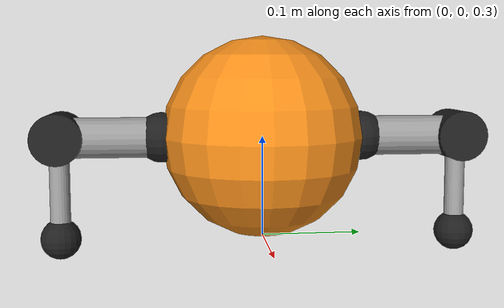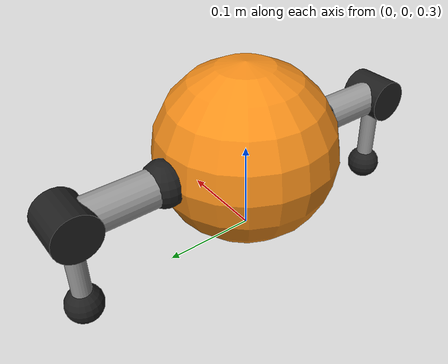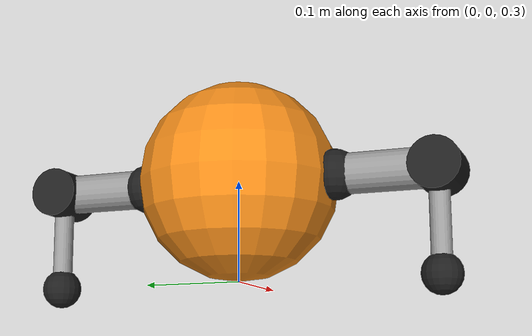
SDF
<sdf version='1.6'>
  <model name='centipede'>
    <link name='base_link'>
      <pose frame=''>0 0 0 0 -0 0</pose>
      <inertial>
        <pose frame=''>0 0 0.4 0 -0 0</pose>
        <mass>1</mass>
        <inertia>
          <ixx>0.004</ixx>
          <ixy>0</ixy>
          <ixz>0</ixz>
          <iyy>0.004</iyy>
          <iyz>0</iyz>
          <izz>0.004</izz>
        </inertia>
      </inertial>
      <collision name='base_link_fixed_joint_lump__body1_collision'>
        <pose frame=''>0 0 0.4 0 -0 0</pose>
        <geometry>
          <sphere>
            <radius>0.1</radius>
          </sphere>
        </geometry>
        <surface>
          <contact>
            <ode/>
          </contact>
          <friction>
            <ode/>
          </friction>
        </surface>
      </collision>
      <visual name='base_link_fixed_joint_lump__body1_visual'>
        <pose frame=''>0 0 0.4 0 -0 0</pose>
        <geometry>
          <sphere>
            <radius>0.1</radius>
          </sphere>
        </geometry>
        <material>
          <script>
            <name>Gazebo/Orange</name>
            <uri>file://media/materials/scripts/gazebo.material</uri>
          </script>
        </material>
      </visual>
      <gravity>1</gravity>
      <velocity_decay/>
    </link>
    <link name='base_left_1'>
      <pose frame=''>0 0.1 0.4 0 -0 1.5708</pose>
      <inertial>
        <pose frame=''>0 0 0 0 -0 0</pose>
        <mass>0.5</mass>
        <inertia>
          <ixx>0.000125</ixx>
          <ixy>0</ixy>
          <ixz>0</ixz>
          <iyy>0.000125</iyy>
          <iyz>0</iyz>
          <izz>0.000125</izz>
        </inertia>
      </inertial>
      <collision name='base_left_1_collision'>
        <pose frame=''>0 0 0 0 -0 0</pose>
        <geometry>
          <sphere>
            <radius>0.025</radius>
          </sphere>
        </geometry>
        <surface>
          <contact>
            <ode/>
          </contact>
          <friction>
            <ode/>
          </friction>
        </surface>
      </collision>
      <visual name='base_left_1_visual'>
        <pose frame=''>0 0 0 0 -0 0</pose>
        <geometry>
          <sphere>
            <radius>0.025</radius>
          </sphere>
        </geometry>
        <material>
          <script>
            <name>Gazebo/Black</name>
            <uri>file://media/materials/scripts/gazebo.material</uri>
          </script>
        </material>
      </visual>
      <gravity>1</gravity>
      <velocity_decay/>
      <self_collide>0</self_collide>
    </link>
    <joint name='hinge_left_1_1' type='revolute'>
      <child>base_left_1</child>
      <parent>base_link</parent>
      <axis>
        <xyz>0 0 1</xyz>
        <limit>
          <lower>-0.392688</lower>
          <upper>0.785</upper>
          <effort>1000</effort>
          <velocity>100</velocity>
        </limit>
        <dynamics>
          <spring_reference>0</spring_reference>
          <spring_stiffness>0</spring_stiffness>
        </dynamics>
        <use_parent_model_frame>1</use_parent_model_frame>
      </axis>
    </joint>
    <link name='link_left_1_upper'>
      <pose frame=''>0 0.1 0.4 0 1.5707 1.5708</pose>
      <inertial>
        <pose frame=''>0 0 0.06 0 -0 0</pose>
        <mass>2.5</mass>
        <inertia>
          <ixx>0.00304896</ixx>
          <ixy>0</ixy>
          <ixz>0</ixz>
          <iyy>0.00302292</iyy>
          <iyz>2.50851e-09</iyz>
          <izz>0.000582292</izz>
        </inertia>
      </inertial>
      <collision name='link_left_1_upper_collision'>
        <pose frame=''>0 0 0.05 0 -0 0</pose>
        <geometry>
          <cylinder>
            <length>0.1</length>
            <radius>0.02</radius>
          </cylinder>
        </geometry>
        <surface>
          <contact>
            <ode>
              <kp>1e+07</kp>
              <kd>1</kd>
            </ode>
          </contact>
          <friction>
            <ode>
              <mu>10000</mu>
              <mu2>10000</mu2>
              <fdir1>1 0 0</fdir1>
            </ode>
          </friction>
        </surface>
      </collision>
      <collision name='link_left_1_upper_fixed_joint_lump__serbo_left_1_collision_1'>
        <pose frame=''>0 0 0.1 1.5707 -0 0</pose>
        <geometry>
          <cylinder>
            <length>0.05</length>
            <radius>0.025</radius>
          </cylinder>
        </geometry>
        <surface>
          <contact>
            <ode>
              <kp>1e+07</kp>
              <kd>1</kd>
            </ode>
          </contact>
          <friction>
            <ode>
              <mu>10000</mu>
              <mu2>10000</mu2>
              <fdir1>1 0 0</fdir1>
            </ode>
          </friction>
        </surface>
      </collision>
      <visual name='link_left_1_upper_visual'>
        <pose frame=''>0 0 0.05 0 -0 0</pose>
        <geometry>
          <cylinder>
            <length>0.1</length>
            <radius>0.02</radius>
          </cylinder>
        </geometry>
        <material>
          <script>
            <name>Gazebo/Gray</name>
            <uri>file://media/materials/scripts/gazebo.material</uri>
          </script>
        </material>
      </visual>
      <visual name='link_left_1_upper_fixed_joint_lump__serbo_left_1_visual_1'>
        <pose frame=''>0 0 0.1 1.5707 -0 0</pose>
        <geometry>
          <cylinder>
            <length>0.05</length>
            <radius>0.025</radius>
          </cylinder>
        </geometry>
        <material>
          <script>
            <name>Gazebo/Black</name>
            <uri>file://media/materials/scripts/gazebo.material</uri>
          </script>
        </material>
      </visual>
      <velocity_decay/>
      <gravity>1</gravity>
      <velocity_decay/>
      <self_collide>0</self_collide>
    </link>
    <joint name='hinge_left_1_2' type='revolute'>
      <child>link_left_1_upper</child>
      <parent>base_left_1</parent>
      <axis>
        <xyz>-1 0 -0</xyz>
        <limit>
          <lower>-0.1963</lower>
          <upper>0.1963</upper>
          <effort>1000</effort>
          <velocity>100</velocity>
        </limit>
        <dynamics>
          <spring_reference>0</spring_reference>
          <spring_stiffness>0</spring_stiffness>
        </dynamics>
        <use_parent_model_frame>1</use_parent_model_frame>
      </axis>
    </joint>
    <link name='link_left_1_lower'>
      <pose frame=''>0 0.2 0.40001 3.1415 9.6e-05 -3.1415</pose>
      <inertial>
        <pose frame=''>0 0 0.050495 0 -0 0</pose>
        <mass>2.02</mass>
        <inertia>
          <ixx>0.00176937</ixx>
          <ixy>0</ixy>
          <ixz>0</ixz>
          <iyy>0.00176937</iyy>
          <iyz>0</iyz>
          <izz>0.0001032</izz>
        </inertia>
      </inertial>
      <collision name='link_left_1_lower_collision'>
        <pose frame=''>0 0 0.05 0 -0 0</pose>
        <geometry>
          <cylinder>
            <length>0.1</length>
            <radius>0.01</radius>
          </cylinder>
        </geometry>
        <surface>
          <contact>
            <ode>
              <kp>1e+07</kp>
              <kd>1</kd>
            </ode>
          </contact>
          <friction>
            <ode>
              <mu>10000</mu>
              <mu2>10000</mu2>
              <fdir1>1 0 0</fdir1>
            </ode>
          </friction>
        </surface>
      </collision>
      <collision name='link_left_1_lower_fixed_joint_lump__ball_left_1_collision_1'>
        <pose frame=''>0 0 0.1 0 -0 0</pose>
        <geometry>
          <sphere>
            <radius>0.02</radius>
          </sphere>
        </geometry>
        <surface>
          <contact>
            <ode>
              <kp>1e+07</kp>
              <kd>1</kd>
            </ode>
          </contact>
          <friction>
            <ode>
              <mu>10000</mu>
              <mu2>10000</mu2>
              <fdir1>1 0 0</fdir1>
            </ode>
          </friction>
        </surface>
      </collision>
      <visual name='link_left_1_lower_visual'>
        <pose frame=''>0 0 0.05 0 -0 0</pose>
        <geometry>
          <cylinder>
            <length>0.1</length>
            <radius>0.01</radius>
          </cylinder>
        </geometry>
        <material>
          <script>
            <name>Gazebo/Gray</name>
            <uri>file://media/materials/scripts/gazebo.material</uri>
          </script>
        </material>
      </visual>
      <visual name='link_left_1_lower_fixed_joint_lump__ball_left_1_visual_1'>
        <pose frame=''>0 0 0.1 0 -0 0</pose>
        <geometry>
          <sphere>
            <radius>0.02</radius>
          </sphere>
        </geometry>
        <material>
          <script>
            <name>Gazebo/Black</name>
            <uri>file://media/materials/scripts/gazebo.material</uri>
          </script>
        </material>
      </visual>
      <velocity_decay/>
      <gravity>1</gravity>
      <velocity_decay/>
      <self_collide>0</self_collide>
    </link>
    <joint name='hinge_left_1_3' type='revolute'>
      <child>link_left_1_lower</child>
      <parent>link_left_1_upper</parent>
      <axis>
        <xyz>-1 -9.6e-05 -9.6e-05</xyz>
        <limit>
          <lower>-0.785</lower>
          <upper>0.785</upper>
          <effort>1000</effort>
          <velocity>100</velocity>
        </limit>
        <dynamics>
          <spring_reference>0</spring_reference>
          <spring_stiffness>0</spring_stiffness>
        </dynamics>
        <use_parent_model_frame>1</use_parent_model_frame>
      </axis>
    </joint>
    <link name='base_right_1'>
      <pose frame=''>0 -0.1 0.4 0 -0 -1.5708</pose>
      <inertial>
        <pose frame=''>0 0 0 0 -0 0</pose>
        <mass>0.5</mass>
        <inertia>
          <ixx>0.000125</ixx>
          <ixy>0</ixy>
          <ixz>0</ixz>
          <iyy>0.000125</iyy>
          <iyz>0</iyz>
          <izz>0.000125</izz>
        </inertia>
      </inertial>
      <collision name='base_right_1_collision'>
        <pose frame=''>0 0 0 0 -0 0</pose>
        <geometry>
          <sphere>
            <radius>0.025</radius>
          </sphere>
        </geometry>
        <surface>
          <contact>
            <ode/>
          </contact>
          <friction>
            <ode/>
          </friction>
        </surface>
      </collision>
      <visual name='base_right_1_visual'>
        <pose frame=''>0 0 0 0 -0 0</pose>
        <geometry>
          <sphere>
            <radius>0.025</radius>
          </sphere>
        </geometry>
        <material>
          <script>
            <name>Gazebo/Black</name>
            <uri>file://media/materials/scripts/gazebo.material</uri>
          </script>
        </material>
      </visual>
      <gravity>1</gravity>
      <velocity_decay/>
      <self_collide>0</self_collide>
    </link>
    <joint name='hinge_right_1_1' type='revolute'>
      <child>base_right_1</child>
      <parent>base_link</parent>
      <axis>
        <xyz>0 0 1</xyz>
        <limit>
          <lower>-0.392688</lower>
          <upper>0.785</upper>
          <effort>1000</effort>
          <velocity>100</velocity>
        </limit>
        <dynamics>
          <spring_reference>0</spring_reference>
          <spring_stiffness>0</spring_stiffness>
        </dynamics>
        <use_parent_model_frame>1</use_parent_model_frame>
      </axis>
    </joint>
    <link name='link_right_1_upper'>
      <pose frame=''>0 -0.1 0.4 0 1.5707 -1.5708</pose>
      <inertial>
        <pose frame=''>0 0 0.06 0 -0 0</pose>
        <mass>2.5</mass>
        <inertia>
          <ixx>0.00304896</ixx>
          <ixy>0</ixy>
          <ixz>0</ixz>
          <iyy>0.00302292</iyy>
          <iyz>2.50851e-09</iyz>
          <izz>0.000582292</izz>
        </inertia>
      </inertial>
      <collision name='link_right_1_upper_collision'>
        <pose frame=''>0 0 0.05 0 -0 0</pose>
        <geometry>
          <cylinder>
            <length>0.1</length>
            <radius>0.02</radius>
          </cylinder>
        </geometry>
        <surface>
          <contact>
            <ode>
              <kp>1e+07</kp>
              <kd>1</kd>
            </ode>
          </contact>
          <friction>
            <ode>
              <mu>10000</mu>
              <mu2>10000</mu2>
              <fdir1>1 0 0</fdir1>
            </ode>
          </friction>
        </surface>
      </collision>
      <collision name='link_right_1_upper_fixed_joint_lump__serbo_right_1_collision_1'>
        <pose frame=''>0 0 0.1 1.5707 -0 0</pose>
        <geometry>
          <cylinder>
            <length>0.05</length>
            <radius>0.025</radius>
          </cylinder>
        </geometry>
        <surface>
          <contact>
            <ode>
              <kp>1e+07</kp>
              <kd>1</kd>
            </ode>
          </contact>
          <friction>
            <ode>
              <mu>10000</mu>
              <mu2>10000</mu2>
              <fdir1>1 0 0</fdir1>
            </ode>
          </friction>
        </surface>
      </collision>
      <visual name='link_right_1_upper_visual'>
        <pose frame=''>0 0 0.05 0 -0 0</pose>
        <geometry>
          <cylinder>
            <length>0.1</length>
            <radius>0.02</radius>
          </cylinder>
        </geometry>
        <material>
          <script>
            <name>Gazebo/Gray</name>
            <uri>file://media/materials/scripts/gazebo.material</uri>
          </script>
        </material>
      </visual>
      <visual name='link_right_1_upper_fixed_joint_lump__serbo_right_1_visual_1'>
        <pose frame=''>0 0 0.1 1.5707 -0 0</pose>
        <geometry>
          <cylinder>
            <length>0.05</length>
            <radius>0.025</radius>
          </cylinder>
        </geometry>
        <material>
          <script>
            <name>Gazebo/Black</name>
            <uri>file://media/materials/scripts/gazebo.material</uri>
          </script>
        </material>
      </visual>
      <velocity_decay/>
      <gravity>1</gravity>
      <velocity_decay/>
      <self_collide>0</self_collide>
    </link>
    <joint name='hinge_right_1_2' type='revolute'>
      <child>link_right_1_upper</child>
      <parent>base_right_1</parent>
      <axis>
        <xyz>1 -0 -0</xyz>
        <limit>
          <lower>-0.1963</lower>
          <upper>0.1963</upper>
          <effort>1000</effort>
          <velocity>100</velocity>
        </limit>
        <dynamics>
          <spring_reference>0</spring_reference>
          <spring_stiffness>0</spring_stiffness>
        </dynamics>
        <use_parent_model_frame>1</use_parent_model_frame>
      </axis>
    </joint>
    <link name='link_right_1_lower'>
      <pose frame=''>-0 -0.2 0.40001 3.1415 9.6e-05 9.6e-05</pose>
      <inertial>
        <pose frame=''>0 0 0.050495 0 -0 0</pose>
        <mass>2.02</mass>
        <inertia>
          <ixx>0.00176937</ixx>
          <ixy>0</ixy>
          <ixz>0</ixz>
          <iyy>0.00176937</iyy>
          <iyz>0</iyz>
          <izz>0.0001032</izz>
        </inertia>
      </inertial>
      <collision name='link_right_1_lower_collision'>
        <pose frame=''>0 0 0.05 0 -0 0</pose>
        <geometry>
          <cylinder>
            <length>0.1</length>
            <radius>0.01</radius>
          </cylinder>
        </geometry>
        <surface>
          <contact>
            <ode>
              <kp>1e+07</kp>
              <kd>1</kd>
            </ode>
          </contact>
          <friction>
            <ode>
              <mu>10000</mu>
              <mu2>10000</mu2>
              <fdir1>1 0 0</fdir1>
            </ode>
          </friction>
        </surface>
      </collision>
      <collision name='link_right_1_lower_fixed_joint_lump__ball_right_1_collision_1'>
        <pose frame=''>0 0 0.1 0 -0 0</pose>
        <geometry>
          <sphere>
            <radius>0.02</radius>
          </sphere>
        </geometry>
        <surface>
          <contact>
            <ode>
              <kp>1e+07</kp>
              <kd>1</kd>
            </ode>
          </contact>
          <friction>
            <ode>
              <mu>10000</mu>
              <mu2>10000</mu2>
              <fdir1>1 0 0</fdir1>
            </ode>
          </friction>
        </surface>
      </collision>
      <visual name='link_right_1_lower_visual'>
        <pose frame=''>0 0 0.05 0 -0 0</pose>
        <geometry>
          <cylinder>
            <length>0.1</length>
            <radius>0.01</radius>
          </cylinder>
        </geometry>
        <material>
          <script>
            <name>Gazebo/Gray</name>
            <uri>file://media/materials/scripts/gazebo.material</uri>
          </script>
        </material>
      </visual>
      <visual name='link_right_1_lower_fixed_joint_lump__ball_right_1_visual_1'>
        <pose frame=''>0 0 0.1 0 -0 0</pose>
        <geometry>
          <sphere>
            <radius>0.02</radius>
          </sphere>
        </geometry>
        <material>
          <script>
            <name>Gazebo/Black</name>
            <uri>file://media/materials/scripts/gazebo.material</uri>
          </script>
        </material>
      </visual>
      <velocity_decay/>
      <gravity>1</gravity>
      <velocity_decay/>
      <self_collide>0</self_collide>
    </link>
    <joint name='hinge_right_1_3' type='revolute'>
      <child>link_right_1_lower</child>
      <parent>link_right_1_upper</parent>
      <axis>
        <xyz>1 9.6e-05 -9.6e-05</xyz>
        <limit>
          <lower>-0.785</lower>
          <upper>0.785</upper>
          <effort>1000</effort>
          <velocity>100</velocity>
        </limit>
        <dynamics>
          <spring_reference>0</spring_reference>
          <spring_stiffness>0</spring_stiffness>
        </dynamics>
        <use_parent_model_frame>1</use_parent_model_frame>
      </axis>
    </joint>
  </model>
</sdf>
